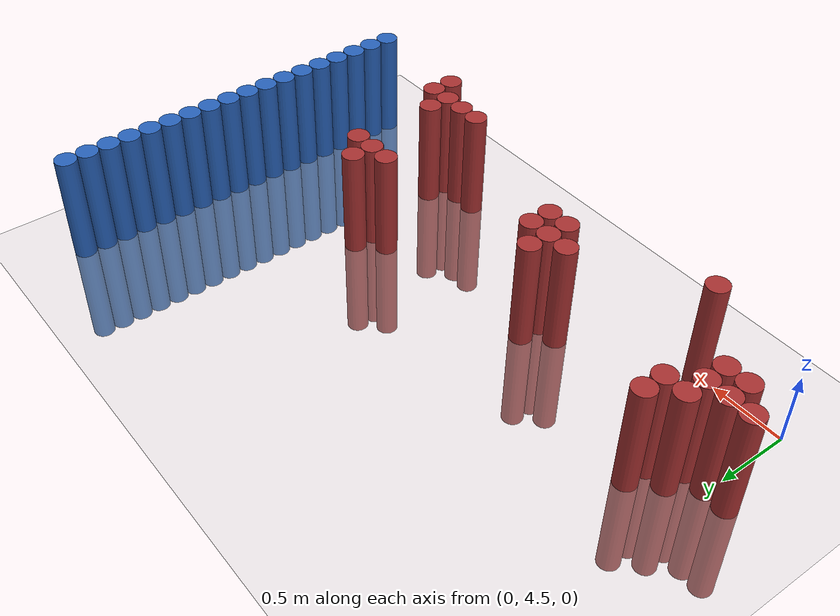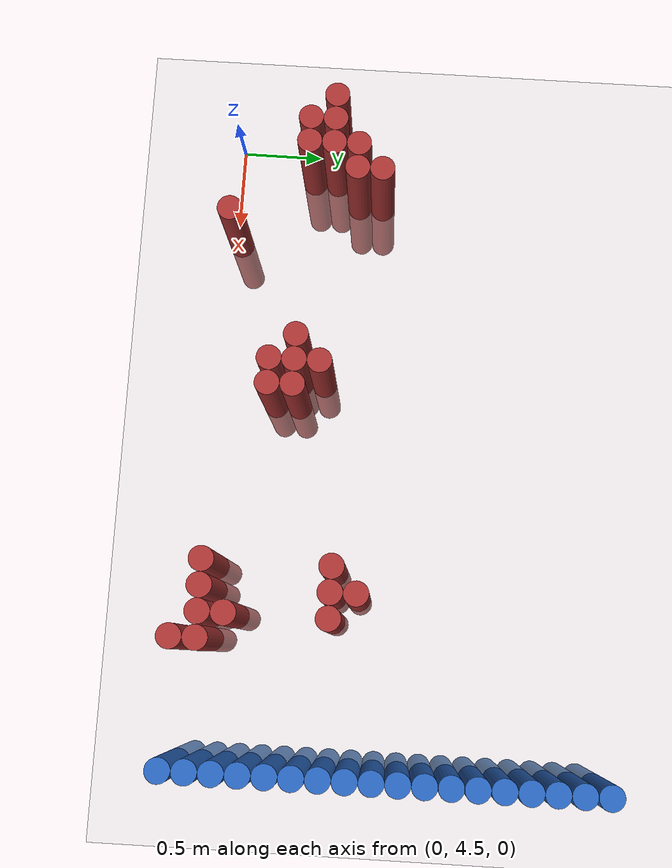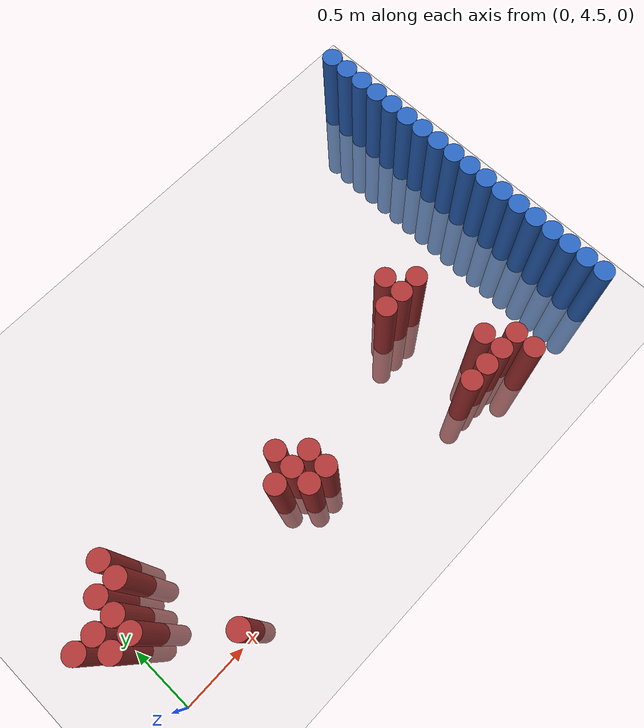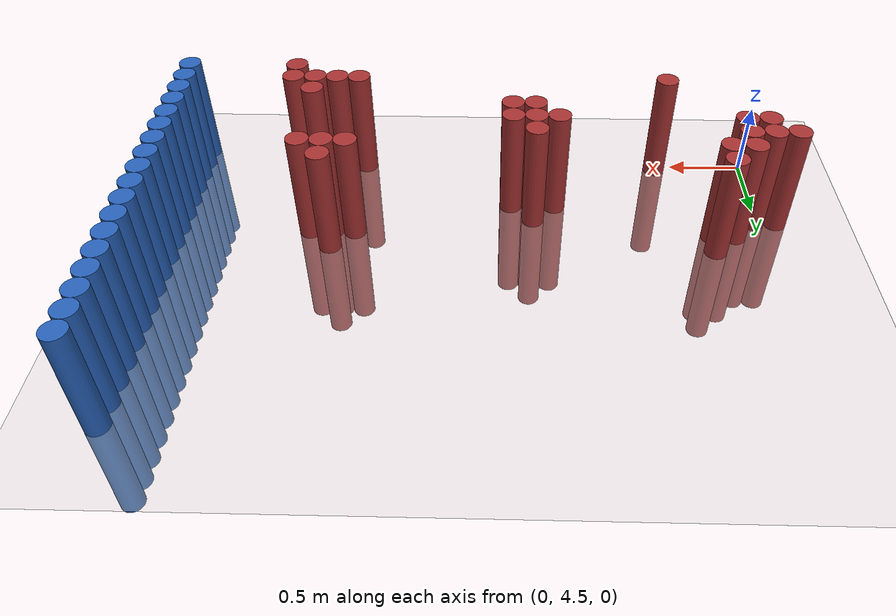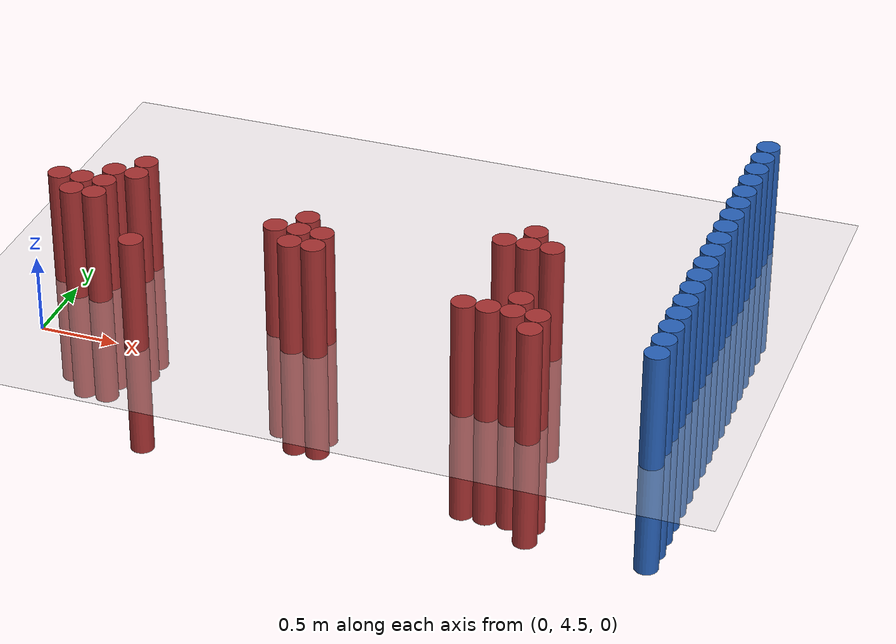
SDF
<sdf version="1.6">
 <world name="default">
  <model name="ground_plane">
   <static>1</static>
   <link name="link">
    <collision name="collision">
     <geometry><plane><normal>0 0 1</normal><size>100 100</size></plane></geometry>
     <surface><friction><ode><mu>100</mu><mu2>50</mu2></ode></friction></surface>
    </collision>
    <visual name="visual">
     <cast_shadows>0</cast_shadows>
     <geometry><plane><normal>0 0 1</normal><size>100 100</size></plane></geometry>
     <material>
      <script><uri>file://media/materials/scripts/gazebo.material</uri><name>Gazebo/Grey</name></script>
     </material>
    </visual>
   </link>
  </model>
  <model name="unit_cylinder_172">
   <static>1</static>
   <pose>3.925000 4.375000 0.000000 0.000000 0.000000 0.000000</pose>
   <link name="link">
    <inertial>
     <mass>1</mass>
     <inertia><ixx>0.145833</ixx><ixy>0</ixy><ixz>0</ixz><iyy>0.145833</iyy><iyz>0</iyz><izz>0.125</izz></inertia>
    </inertial>
    <collision name="collision">
     <geometry><cylinder><radius>0.075000</radius><length>1.5</length></cylinder></geometry>
    </collision>
    <visual name="visual">
     <geometry><cylinder><radius>0.075000</radius><length>1.5</length></cylinder></geometry>
     <material>
      <ambient>0.152000 0.379000 0.720000 1</ambient>
      <diffuse>0.152000 0.379000 0.720000 1</diffuse>
     </material>
     <material>
      <script><name>Gazebo/Grey</name><uri>file://media/materials/scripts/gazebo.material</uri></script>
     </material>
    </visual>
   </link>
  </model>
  <model name="unit_cylinder_174">
   <static>1</static>
   <pose>3.925000 4.525000 0.000000 0.000000 0.000000 0.000000</pose>
   <link name="link">
    <inertial>
     <mass>1</mass>
     <inertia><ixx>0.145833</ixx><ixy>0</ixy><ixz>0</ixz><iyy>0.145833</iyy><iyz>0</iyz><izz>0.125</izz></inertia>
    </inertial>
    <collision name="collision">
     <geometry><cylinder><radius>0.075000</radius><length>1.5</length></cylinder></geometry>
    </collision>
    <visual name="visual">
     <geometry><cylinder><radius>0.075000</radius><length>1.5</length></cylinder></geometry>
     <material>
      <ambient>0.152000 0.379000 0.720000 1</ambient>
      <diffuse>0.152000 0.379000 0.720000 1</diffuse>
     </material>
     <material>
      <script><name>Gazebo/Grey</name><uri>file://media/materials/scripts/gazebo.material</uri></script>
     </material>
    </visual>
   </link>
  </model>
  <model name="unit_cylinder_176">
   <static>1</static>
   <pose>3.925000 4.675000 0.000000 0.000000 0.000000 0.000000</pose>
   <link name="link">
    <inertial>
     <mass>1</mass>
     <inertia><ixx>0.145833</ixx><ixy>0</ixy><ixz>0</ixz><iyy>0.145833</iyy><iyz>0</iyz><izz>0.125</izz></inertia>
    </inertial>
    <collision name="collision">
     <geometry><cylinder><radius>0.075000</radius><length>1.5</length></cylinder></geometry>
    </collision>
    <visual name="visual">
     <geometry><cylinder><radius>0.075000</radius><length>1.5</length></cylinder></geometry>
     <material>
      <ambient>0.152000 0.379000 0.720000 1</ambient>
      <diffuse>0.152000 0.379000 0.720000 1</diffuse>
     </material>
     <material>
      <script><name>Gazebo/Grey</name><uri>file://media/materials/scripts/gazebo.material</uri></script>
     </material>
    </visual>
   </link>
  </model>
  <model name="unit_cylinder_178">
   <static>1</static>
   <pose>3.925000 4.825000 0.000000 0.000000 0.000000 0.000000</pose>
   <link name="link">
    <inertial>
     <mass>1</mass>
     <inertia><ixx>0.145833</ixx><ixy>0</ixy><ixz>0</ixz><iyy>0.145833</iyy><iyz>0</iyz><izz>0.125</izz></inertia>
    </inertial>
    <collision name="collision">
     <geometry><cylinder><radius>0.075000</radius><length>1.5</length></cylinder></geometry>
    </collision>
    <visual name="visual">
     <geometry><cylinder><radius>0.075000</radius><length>1.5</length></cylinder></geometry>
     <material>
      <ambient>0.152000 0.379000 0.720000 1</ambient>
      <diffuse>0.152000 0.379000 0.720000 1</diffuse>
     </material>
     <material>
      <script><name>Gazebo/Grey</name><uri>file://media/materials/scripts/gazebo.material</uri></script>
     </material>
    </visual>
   </link>
  </model>
  <model name="unit_cylinder_180">
   <static>1</static>
   <pose>3.925000 4.975000 0.000000 0.000000 0.000000 0.000000</pose>
   <link name="link">
    <inertial>
     <mass>1</mass>
     <inertia><ixx>0.145833</ixx><ixy>0</ixy><ixz>0</ixz><iyy>0.145833</iyy><iyz>0</iyz><izz>0.125</izz></inertia>
    </inertial>
    <collision name="collision">
     <geometry><cylinder><radius>0.075000</radius><length>1.5</length></cylinder></geometry>
    </collision>
    <visual name="visual">
     <geometry><cylinder><radius>0.075000</radius><length>1.5</length></cylinder></geometry>
     <material>
      <ambient>0.152000 0.379000 0.720000 1</ambient>
      <diffuse>0.152000 0.379000 0.720000 1</diffuse>
     </material>
     <material>
      <script><name>Gazebo/Grey</name><uri>file://media/materials/scripts/gazebo.material</uri></script>
     </material>
    </visual>
   </link>
  </model>
  <model name="unit_cylinder_182">
   <static>1</static>
   <pose>3.925000 5.125000 0.000000 0.000000 0.000000 0.000000</pose>
   <link name="link">
    <inertial>
     <mass>1</mass>
     <inertia><ixx>0.145833</ixx><ixy>0</ixy><ixz>0</ixz><iyy>0.145833</iyy><iyz>0</iyz><izz>0.125</izz></inertia>
    </inertial>
    <collision name="collision">
     <geometry><cylinder><radius>0.075000</radius><length>1.5</length></cylinder></geometry>
    </collision>
    <visual name="visual">
     <geometry><cylinder><radius>0.075000</radius><length>1.5</length></cylinder></geometry>
     <material>
      <ambient>0.152000 0.379000 0.720000 1</ambient>
      <diffuse>0.152000 0.379000 0.720000 1</diffuse>
     </material>
     <material>
      <script><name>Gazebo/Grey</name><uri>file://media/materials/scripts/gazebo.material</uri></script>
     </material>
    </visual>
   </link>
  </model>
  <model name="unit_cylinder_184">
   <static>1</static>
   <pose>3.925000 5.275000 0.000000 0.000000 0.000000 0.000000</pose>
   <link name="link">
    <inertial>
     <mass>1</mass>
     <inertia><ixx>0.145833</ixx><ixy>0</ixy><ixz>0</ixz><iyy>0.145833</iyy><iyz>0</iyz><izz>0.125</izz></inertia>
    </inertial>
    <collision name="collision">
     <geometry><cylinder><radius>0.075000</radius><length>1.5</length></cylinder></geometry>
    </collision>
    <visual name="visual">
     <geometry><cylinder><radius>0.075000</radius><length>1.5</length></cylinder></geometry>
     <material>
      <ambient>0.152000 0.379000 0.720000 1</ambient>
      <diffuse>0.152000 0.379000 0.720000 1</diffuse>
     </material>
     <material>
      <script><name>Gazebo/Grey</name><uri>file://media/materials/scripts/gazebo.material</uri></script>
     </material>
    </visual>
   </link>
  </model>
  <model name="unit_cylinder_186">
   <static>1</static>
   <pose>3.925000 5.425000 0.000000 0.000000 0.000000 0.000000</pose>
   <link name="link">
    <inertial>
     <mass>1</mass>
     <inertia><ixx>0.145833</ixx><ixy>0</ixy><ixz>0</ixz><iyy>0.145833</iyy><iyz>0</iyz><izz>0.125</izz></inertia>
    </inertial>
    <collision name="collision">
     <geometry><cylinder><radius>0.075000</radius><length>1.5</length></cylinder></geometry>
    </collision>
    <visual name="visual">
     <geometry><cylinder><radius>0.075000</radius><length>1.5</length></cylinder></geometry>
     <material>
      <ambient>0.152000 0.379000 0.720000 1</ambient>
      <diffuse>0.152000 0.379000 0.720000 1</diffuse>
     </material>
     <material>
      <script><name>Gazebo/Grey</name><uri>file://media/materials/scripts/gazebo.material</uri></script>
     </material>
    </visual>
   </link>
  </model>
  <model name="unit_cylinder_188">
   <static>1</static>
   <pose>3.925000 5.575000 0.000000 0.000000 0.000000 0.000000</pose>
   <link name="link">
    <inertial>
     <mass>1</mass>
     <inertia><ixx>0.145833</ixx><ixy>0</ixy><ixz>0</ixz><iyy>0.145833</iyy><iyz>0</iyz><izz>0.125</izz></inertia>
    </inertial>
    <collision name="collision">
     <geometry><cylinder><radius>0.075000</radius><length>1.5</length></cylinder></geometry>
    </collision>
    <visual name="visual">
     <geometry><cylinder><radius>0.075000</radius><length>1.5</length></cylinder></geometry>
     <material>
      <ambient>0.152000 0.379000 0.720000 1</ambient>
      <diffuse>0.152000 0.379000 0.720000 1</diffuse>
     </material>
     <material>
      <script><name>Gazebo/Grey</name><uri>file://media/materials/scripts/gazebo.material</uri></script>
     </material>
    </visual>
   </link>
  </model>
  <model name="unit_cylinder_190">
   <static>1</static>
   <pose>3.925000 5.725000 0.000000 0.000000 0.000000 0.000000</pose>
   <link name="link">
    <inertial>
     <mass>1</mass>
     <inertia><ixx>0.145833</ixx><ixy>0</ixy><ixz>0</ixz><iyy>0.145833</iyy><iyz>0</iyz><izz>0.125</izz></inertia>
    </inertial>
    <collision name="collision">
     <geometry><cylinder><radius>0.075000</radius><length>1.5</length></cylinder></geometry>
    </collision>
    <visual name="visual">
     <geometry><cylinder><radius>0.075000</radius><length>1.5</length></cylinder></geometry>
     <material>
      <ambient>0.152000 0.379000 0.720000 1</ambient>
      <diffuse>0.152000 0.379000 0.720000 1</diffuse>
     </material>
     <material>
      <script><name>Gazebo/Grey</name><uri>file://media/materials/scripts/gazebo.material</uri></script>
     </material>
    </visual>
   </link>
  </model>
  <model name="unit_cylinder_192">
   <static>1</static>
   <pose>3.925000 5.875000 0.000000 0.000000 0.000000 0.000000</pose>
   <link name="link">
    <inertial>
     <mass>1</mass>
     <inertia><ixx>0.145833</ixx><ixy>0</ixy><ixz>0</ixz><iyy>0.145833</iyy><iyz>0</iyz><izz>0.125</izz></inertia>
    </inertial>
    <collision name="collision">
     <geometry><cylinder><radius>0.075000</radius><length>1.5</length></cylinder></geometry>
    </collision>
    <visual name="visual">
     <geometry><cylinder><radius>0.075000</radius><length>1.5</length></cylinder></geometry>
     <material>
      <ambient>0.152000 0.379000 0.720000 1</ambient>
      <diffuse>0.152000 0.379000 0.720000 1</diffuse>
     </material>
     <material>
      <script><name>Gazebo/Grey</name><uri>file://media/materials/scripts/gazebo.material</uri></script>
     </material>
    </visual>
   </link>
  </model>
  <model name="unit_cylinder_194">
   <static>1</static>
   <pose>3.925000 6.025000 0.000000 0.000000 0.000000 0.000000</pose>
   <link name="link">
    <inertial>
     <mass>1</mass>
     <inertia><ixx>0.145833</ixx><ixy>0</ixy><ixz>0</ixz><iyy>0.145833</iyy><iyz>0</iyz><izz>0.125</izz></inertia>
    </inertial>
    <collision name="collision">
     <geometry><cylinder><radius>0.075000</radius><length>1.5</length></cylinder></geometry>
    </collision>
    <visual name="visual">
     <geometry><cylinder><radius>0.075000</radius><length>1.5</length></cylinder></geometry>
     <material>
      <ambient>0.152000 0.379000 0.720000 1</ambient>
      <diffuse>0.152000 0.379000 0.720000 1</diffuse>
     </material>
     <material>
      <script><name>Gazebo/Grey</name><uri>file://media/materials/scripts/gazebo.material</uri></script>
     </material>
    </visual>
   </link>
  </model>
  <model name="unit_cylinder_196">
   <static>1</static>
   <pose>3.925000 6.175000 0.000000 0.000000 0.000000 0.000000</pose>
   <link name="link">
    <inertial>
     <mass>1</mass>
     <inertia><ixx>0.145833</ixx><ixy>0</ixy><ixz>0</ixz><iyy>0.145833</iyy><iyz>0</iyz><izz>0.125</izz></inertia>
    </inertial>
    <collision name="collision">
     <geometry><cylinder><radius>0.075000</radius><length>1.5</length></cylinder></geometry>
    </collision>
    <visual name="visual">
     <geometry><cylinder><radius>0.075000</radius><length>1.5</length></cylinder></geometry>
     <material>
      <ambient>0.152000 0.379000 0.720000 1</ambient>
      <diffuse>0.152000 0.379000 0.720000 1</diffuse>
     </material>
     <material>
      <script><name>Gazebo/Grey</name><uri>file://media/materials/scripts/gazebo.material</uri></script>
     </material>
    </visual>
   </link>
  </model>
  <model name="unit_cylinder_198">
   <static>1</static>
   <pose>3.925000 6.325000 0.000000 0.000000 0.000000 0.000000</pose>
   <link name="link">
    <inertial>
     <mass>1</mass>
     <inertia><ixx>0.145833</ixx><ixy>0</ixy><ixz>0</ixz><iyy>0.145833</iyy><iyz>0</iyz><izz>0.125</izz></inertia>
    </inertial>
    <collision name="collision">
     <geometry><cylinder><radius>0.075000</radius><length>1.5</length></cylinder></geometry>
    </collision>
    <visual name="visual">
     <geometry><cylinder><radius>0.075000</radius><length>1.5</length></cylinder></geometry>
     <material>
      <ambient>0.152000 0.379000 0.720000 1</ambient>
      <diffuse>0.152000 0.379000 0.720000 1</diffuse>
     </material>
     <material>
      <script><name>Gazebo/Grey</name><uri>file://media/materials/scripts/gazebo.material</uri></script>
     </material>
    </visual>
   </link>
  </model>
  <model name="unit_cylinder_200">
   <static>1</static>
   <pose>3.925000 6.475000 0.000000 0.000000 0.000000 0.000000</pose>
   <link name="link">
    <inertial>
     <mass>1</mass>
     <inertia><ixx>0.145833</ixx><ixy>0</ixy><ixz>0</ixz><iyy>0.145833</iyy><iyz>0</iyz><izz>0.125</izz></inertia>
    </inertial>
    <collision name="collision">
     <geometry><cylinder><radius>0.075000</radius><length>1.5</length></cylinder></geometry>
    </collision>
    <visual name="visual">
     <geometry><cylinder><radius>0.075000</radius><length>1.5</length></cylinder></geometry>
     <material>
      <ambient>0.152000 0.379000 0.720000 1</ambient>
      <diffuse>0.152000 0.379000 0.720000 1</diffuse>
     </material>
     <material>
      <script><name>Gazebo/Grey</name><uri>file://media/materials/scripts/gazebo.material</uri></script>
     </material>
    </visual>
   </link>
  </model>
  <model name="unit_cylinder_202">
   <static>1</static>
   <pose>3.925000 6.625000 0.000000 0.000000 0.000000 0.000000</pose>
   <link name="link">
    <inertial>
     <mass>1</mass>
     <inertia><ixx>0.145833</ixx><ixy>0</ixy><ixz>0</ixz><iyy>0.145833</iyy><iyz>0</iyz><izz>0.125</izz></inertia>
    </inertial>
    <collision name="collision">
     <geometry><cylinder><radius>0.075000</radius><length>1.5</length></cylinder></geometry>
    </collision>
    <visual name="visual">
     <geometry><cylinder><radius>0.075000</radius><length>1.5</length></cylinder></geometry>
     <material>
      <ambient>0.152000 0.379000 0.720000 1</ambient>
      <diffuse>0.152000 0.379000 0.720000 1</diffuse>
     </material>
     <material>
      <script><name>Gazebo/Grey</name><uri>file://media/materials/scripts/gazebo.material</uri></script>
     </material>
    </visual>
   </link>
  </model>
  <model name="unit_cylinder_204">
   <static>1</static>
   <pose>3.925000 6.775000 0.000000 0.000000 0.000000 0.000000</pose>
   <link name="link">
    <inertial>
     <mass>1</mass>
     <inertia><ixx>0.145833</ixx><ixy>0</ixy><ixz>0</ixz><iyy>0.145833</iyy><iyz>0</iyz><izz>0.125</izz></inertia>
    </inertial>
    <collision name="collision">
     <geometry><cylinder><radius>0.075000</radius><length>1.5</length></cylinder></geometry>
    </collision>
    <visual name="visual">
     <geometry><cylinder><radius>0.075000</radius><length>1.5</length></cylinder></geometry>
     <material>
      <ambient>0.152000 0.379000 0.720000 1</ambient>
      <diffuse>0.152000 0.379000 0.720000 1</diffuse>
     </material>
     <material>
      <script><name>Gazebo/Grey</name><uri>file://media/materials/scripts/gazebo.material</uri></script>
     </material>
    </visual>
   </link>
  </model>
  <model name="unit_cylinder_206">
   <static>1</static>
   <pose>3.925000 6.925000 0.000000 0.000000 0.000000 0.000000</pose>
   <link name="link">
    <inertial>
     <mass>1</mass>
     <inertia><ixx>0.145833</ixx><ixy>0</ixy><ixz>0</ixz><iyy>0.145833</iyy><iyz>0</iyz><izz>0.125</izz></inertia>
    </inertial>
    <collision name="collision">
     <geometry><cylinder><radius>0.075000</radius><length>1.5</length></cylinder></geometry>
    </collision>
    <visual name="visual">
     <geometry><cylinder><radius>0.075000</radius><length>1.5</length></cylinder></geometry>
     <material>
      <ambient>0.152000 0.379000 0.720000 1</ambient>
      <diffuse>0.152000 0.379000 0.720000 1</diffuse>
     </material>
     <material>
      <script><name>Gazebo/Grey</name><uri>file://media/materials/scripts/gazebo.material</uri></script>
     </material>
    </visual>
   </link>
  </model>
  <model name="unit_cylinder_381">
   <static>1</static>
   <pose>-0.125000 5.125000 0.000000 0.000000 0.000000 0.000000</pose>
   <link name="link">
    <inertial>
     <mass>1</mass>
     <inertia><ixx>0.145833</ixx><ixy>0</ixy><ixz>0</ixz><iyy>0.145833</iyy><iyz>0</iyz><izz>0.125</izz></inertia>
    </inertial>
    <collision name="collision">
     <geometry><cylinder><radius>0.075000</radius><length>1.5</length></cylinder></geometry>
    </collision>
    <visual name="visual">
     <geometry><cylinder><radius>0.075000</radius><length>1.5</length></cylinder></geometry>
     <material>
      <ambient>0.648000 0.192000 0.192000 1</ambient>
      <diffuse>0.648000 0.192000 0.192000 1</diffuse>
     </material>
     <material>
      <script><name>Gazebo/Grey</name><uri>file://media/materials/scripts/gazebo.material</uri></script>
     </material>
    </visual>
   </link>
  </model>
  <model name="unit_cylinder_390">
   <static>1</static>
   <pose>0.025000 4.975000 0.000000 0.000000 0.000000 0.000000</pose>
   <link name="link">
    <inertial>
     <mass>1</mass>
     <inertia><ixx>0.145833</ixx><ixy>0</ixy><ixz>0</ixz><iyy>0.145833</iyy><iyz>0</iyz><izz>0.125</izz></inertia>
    </inertial>
    <collision name="collision">
     <geometry><cylinder><radius>0.075000</radius><length>1.5</length></cylinder></geometry>
    </collision>
    <visual name="visual">
     <geometry><cylinder><radius>0.075000</radius><length>1.5</length></cylinder></geometry>
     <material>
      <ambient>0.648000 0.192000 0.192000 1</ambient>
      <diffuse>0.648000 0.192000 0.192000 1</diffuse>
     </material>
     <material>
      <script><name>Gazebo/Grey</name><uri>file://media/materials/scripts/gazebo.material</uri></script>
     </material>
    </visual>
   </link>
  </model>
  <model name="unit_cylinder_391">
   <static>1</static>
   <pose>0.025000 5.125000 0.000000 0.000000 0.000000 0.000000</pose>
   <link name="link">
    <inertial>
     <mass>1</mass>
     <inertia><ixx>0.145833</ixx><ixy>0</ixy><ixz>0</ixz><iyy>0.145833</iyy><iyz>0</iyz><izz>0.125</izz></inertia>
    </inertial>
    <collision name="collision">
     <geometry><cylinder><radius>0.075000</radius><length>1.5</length></cylinder></geometry>
    </collision>
    <visual name="visual">
     <geometry><cylinder><radius>0.075000</radius><length>1.5</length></cylinder></geometry>
     <material>
      <ambient>0.648000 0.192000 0.192000 1</ambient>
      <diffuse>0.648000 0.192000 0.192000 1</diffuse>
     </material>
     <material>
      <script><name>Gazebo/Grey</name><uri>file://media/materials/scripts/gazebo.material</uri></script>
     </material>
    </visual>
   </link>
  </model>
  <model name="unit_cylinder_396">
   <static>1</static>
   <pose>0.175000 4.975000 0.000000 0.000000 0.000000 0.000000</pose>
   <link name="link">
    <inertial>
     <mass>1</mass>
     <inertia><ixx>0.145833</ixx><ixy>0</ixy><ixz>0</ixz><iyy>0.145833</iyy><iyz>0</iyz><izz>0.125</izz></inertia>
    </inertial>
    <collision name="collision">
     <geometry><cylinder><radius>0.075000</radius><length>1.5</length></cylinder></geometry>
    </collision>
    <visual name="visual">
     <geometry><cylinder><radius>0.075000</radius><length>1.5</length></cylinder></geometry>
     <material>
      <ambient>0.648000 0.192000 0.192000 1</ambient>
      <diffuse>0.648000 0.192000 0.192000 1</diffuse>
     </material>
     <material>
      <script><name>Gazebo/Grey</name><uri>file://media/materials/scripts/gazebo.material</uri></script>
     </material>
    </visual>
   </link>
  </model>
  <model name="unit_cylinder_397">
   <static>1</static>
   <pose>0.175000 5.125000 0.000000 0.000000 0.000000 0.000000</pose>
   <link name="link">
    <inertial>
     <mass>1</mass>
     <inertia><ixx>0.145833</ixx><ixy>0</ixy><ixz>0</ixz><iyy>0.145833</iyy><iyz>0</iyz><izz>0.125</izz></inertia>
    </inertial>
    <collision name="collision">
     <geometry><cylinder><radius>0.075000</radius><length>1.5</length></cylinder></geometry>
    </collision>
    <visual name="visual">
     <geometry><cylinder><radius>0.075000</radius><length>1.5</length></cylinder></geometry>
     <material>
      <ambient>0.648000 0.192000 0.192000 1</ambient>
      <diffuse>0.648000 0.192000 0.192000 1</diffuse>
     </material>
     <material>
      <script><name>Gazebo/Grey</name><uri>file://media/materials/scripts/gazebo.material</uri></script>
     </material>
    </visual>
   </link>
  </model>
  <model name="unit_cylinder_398">
   <static>1</static>
   <pose>0.175000 5.275000 0.000000 0.000000 0.000000 0.000000</pose>
   <link name="link">
    <inertial>
     <mass>1</mass>
     <inertia><ixx>0.145833</ixx><ixy>0</ixy><ixz>0</ixz><iyy>0.145833</iyy><iyz>0</iyz><izz>0.125</izz></inertia>
    </inertial>
    <collision name="collision">
     <geometry><cylinder><radius>0.075000</radius><length>1.5</length></cylinder></geometry>
    </collision>
    <visual name="visual">
     <geometry><cylinder><radius>0.075000</radius><length>1.5</length></cylinder></geometry>
     <material>
      <ambient>0.648000 0.192000 0.192000 1</ambient>
      <diffuse>0.648000 0.192000 0.192000 1</diffuse>
     </material>
     <material>
      <script><name>Gazebo/Grey</name><uri>file://media/materials/scripts/gazebo.material</uri></script>
     </material>
    </visual>
   </link>
  </model>
  <model name="unit_cylinder_402">
   <static>1</static>
   <pose>0.325000 5.275000 0.000000 0.000000 0.000000 0.000000</pose>
   <link name="link">
    <inertial>
     <mass>1</mass>
     <inertia><ixx>0.145833</ixx><ixy>0</ixy><ixz>0</ixz><iyy>0.145833</iyy><iyz>0</iyz><izz>0.125</izz></inertia>
    </inertial>
    <collision name="collision">
     <geometry><cylinder><radius>0.075000</radius><length>1.5</length></cylinder></geometry>
    </collision>
    <visual name="visual">
     <geometry><cylinder><radius>0.075000</radius><length>1.5</length></cylinder></geometry>
     <material>
      <ambient>0.648000 0.192000 0.192000 1</ambient>
      <diffuse>0.648000 0.192000 0.192000 1</diffuse>
     </material>
     <material>
      <script><name>Gazebo/Grey</name><uri>file://media/materials/scripts/gazebo.material</uri></script>
     </material>
    </visual>
   </link>
  </model>
  <model name="unit_cylinder_403">
   <static>1</static>
   <pose>0.325000 5.425000 0.000000 0.000000 0.000000 0.000000</pose>
   <link name="link">
    <inertial>
     <mass>1</mass>
     <inertia><ixx>0.145833</ixx><ixy>0</ixy><ixz>0</ixz><iyy>0.145833</iyy><iyz>0</iyz><izz>0.125</izz></inertia>
    </inertial>
    <collision name="collision">
     <geometry><cylinder><radius>0.075000</radius><length>1.5</length></cylinder></geometry>
    </collision>
    <visual name="visual">
     <geometry><cylinder><radius>0.075000</radius><length>1.5</length></cylinder></geometry>
     <material>
      <ambient>0.648000 0.192000 0.192000 1</ambient>
      <diffuse>0.648000 0.192000 0.192000 1</diffuse>
     </material>
     <material>
      <script><name>Gazebo/Grey</name><uri>file://media/materials/scripts/gazebo.material</uri></script>
     </material>
    </visual>
   </link>
  </model>
  <model name="unit_cylinder_414">
   <static>1</static>
   <pose>0.625000 4.525000 0.000000 0.000000 0.000000 0.000000</pose>
   <link name="link">
    <inertial>
     <mass>1</mass>
     <inertia><ixx>0.145833</ixx><ixy>0</ixy><ixz>0</ixz><iyy>0.145833</iyy><iyz>0</iyz><izz>0.125</izz></inertia>
    </inertial>
    <collision name="collision">
     <geometry><cylinder><radius>0.075000</radius><length>1.5</length></cylinder></geometry>
    </collision>
    <visual name="visual">
     <geometry><cylinder><radius>0.075000</radius><length>1.5</length></cylinder></geometry>
     <material>
      <ambient>0.648000 0.192000 0.192000 1</ambient>
      <diffuse>0.648000 0.192000 0.192000 1</diffuse>
     </material>
     <material>
      <script><name>Gazebo/Grey</name><uri>file://media/materials/scripts/gazebo.material</uri></script>
     </material>
    </visual>
   </link>
  </model>
  <model name="unit_cylinder_424">
   <static>1</static>
   <pose>1.375000 4.975000 0.000000 0.000000 0.000000 0.000000</pose>
   <link name="link">
    <inertial>
     <mass>1</mass>
     <inertia><ixx>0.145833</ixx><ixy>0</ixy><ixz>0</ixz><iyy>0.145833</iyy><iyz>0</iyz><izz>0.125</izz></inertia>
    </inertial>
    <collision name="collision">
     <geometry><cylinder><radius>0.075000</radius><length>1.5</length></cylinder></geometry>
    </collision>
    <visual name="visual">
     <geometry><cylinder><radius>0.075000</radius><length>1.5</length></cylinder></geometry>
     <material>
      <ambient>0.648000 0.192000 0.192000 1</ambient>
      <diffuse>0.648000 0.192000 0.192000 1</diffuse>
     </material>
     <material>
      <script><name>Gazebo/Grey</name><uri>file://media/materials/scripts/gazebo.material</uri></script>
     </material>
    </visual>
   </link>
  </model>
  <model name="unit_cylinder_425">
   <static>1</static>
   <pose>1.525000 4.825000 0.000000 0.000000 0.000000 0.000000</pose>
   <link name="link">
    <inertial>
     <mass>1</mass>
     <inertia><ixx>0.145833</ixx><ixy>0</ixy><ixz>0</ixz><iyy>0.145833</iyy><iyz>0</iyz><izz>0.125</izz></inertia>
    </inertial>
    <collision name="collision">
     <geometry><cylinder><radius>0.075000</radius><length>1.5</length></cylinder></geometry>
    </collision>
    <visual name="visual">
     <geometry><cylinder><radius>0.075000</radius><length>1.5</length></cylinder></geometry>
     <material>
      <ambient>0.648000 0.192000 0.192000 1</ambient>
      <diffuse>0.648000 0.192000 0.192000 1</diffuse>
     </material>
     <material>
      <script><name>Gazebo/Grey</name><uri>file://media/materials/scripts/gazebo.material</uri></script>
     </material>
    </visual>
   </link>
  </model>
  <model name="unit_cylinder_426">
   <static>1</static>
   <pose>1.525000 4.975000 0.000000 0.000000 0.000000 0.000000</pose>
   <link name="link">
    <inertial>
     <mass>1</mass>
     <inertia><ixx>0.145833</ixx><ixy>0</ixy><ixz>0</ixz><iyy>0.145833</iyy><iyz>0</iyz><izz>0.125</izz></inertia>
    </inertial>
    <collision name="collision">
     <geometry><cylinder><radius>0.075000</radius><length>1.5</length></cylinder></geometry>
    </collision>
    <visual name="visual">
     <geometry><cylinder><radius>0.075000</radius><length>1.5</length></cylinder></geometry>
     <material>
      <ambient>0.648000 0.192000 0.192000 1</ambient>
      <diffuse>0.648000 0.192000 0.192000 1</diffuse>
     </material>
     <material>
      <script><name>Gazebo/Grey</name><uri>file://media/materials/scripts/gazebo.material</uri></script>
     </material>
    </visual>
   </link>
  </model>
  <model name="unit_cylinder_427">
   <static>1</static>
   <pose>1.525000 5.125000 0.000000 0.000000 0.000000 0.000000</pose>
   <link name="link">
    <inertial>
     <mass>1</mass>
     <inertia><ixx>0.145833</ixx><ixy>0</ixy><ixz>0</ixz><iyy>0.145833</iyy><iyz>0</iyz><izz>0.125</izz></inertia>
    </inertial>
    <collision name="collision">
     <geometry><cylinder><radius>0.075000</radius><length>1.5</length></cylinder></geometry>
    </collision>
    <visual name="visual">
     <geometry><cylinder><radius>0.075000</radius><length>1.5</length></cylinder></geometry>
     <material>
      <ambient>0.648000 0.192000 0.192000 1</ambient>
      <diffuse>0.648000 0.192000 0.192000 1</diffuse>
     </material>
     <material>
      <script><name>Gazebo/Grey</name><uri>file://media/materials/scripts/gazebo.material</uri></script>
     </material>
    </visual>
   </link>
  </model>
  <model name="unit_cylinder_428">
   <static>1</static>
   <pose>1.675000 4.825000 0.000000 0.000000 0.000000 0.000000</pose>
   <link name="link">
    <inertial>
     <mass>1</mass>
     <inertia><ixx>0.145833</ixx><ixy>0</ixy><ixz>0</ixz><iyy>0.145833</iyy><iyz>0</iyz><izz>0.125</izz></inertia>
    </inertial>
    <collision name="collision">
     <geometry><cylinder><radius>0.075000</radius><length>1.5</length></cylinder></geometry>
    </collision>
    <visual name="visual">
     <geometry><cylinder><radius>0.075000</radius><length>1.5</length></cylinder></geometry>
     <material>
      <ambient>0.648000 0.192000 0.192000 1</ambient>
      <diffuse>0.648000 0.192000 0.192000 1</diffuse>
     </material>
     <material>
      <script><name>Gazebo/Grey</name><uri>file://media/materials/scripts/gazebo.material</uri></script>
     </material>
    </visual>
   </link>
  </model>
  <model name="unit_cylinder_429">
   <static>1</static>
   <pose>1.675000 4.975000 0.000000 0.000000 0.000000 0.000000</pose>
   <link name="link">
    <inertial>
     <mass>1</mass>
     <inertia><ixx>0.145833</ixx><ixy>0</ixy><ixz>0</ixz><iyy>0.145833</iyy><iyz>0</iyz><izz>0.125</izz></inertia>
    </inertial>
    <collision name="collision">
     <geometry><cylinder><radius>0.075000</radius><length>1.5</length></cylinder></geometry>
    </collision>
    <visual name="visual">
     <geometry><cylinder><radius>0.075000</radius><length>1.5</length></cylinder></geometry>
     <material>
      <ambient>0.648000 0.192000 0.192000 1</ambient>
      <diffuse>0.648000 0.192000 0.192000 1</diffuse>
     </material>
     <material>
      <script><name>Gazebo/Grey</name><uri>file://media/materials/scripts/gazebo.material</uri></script>
     </material>
    </visual>
   </link>
  </model>
  <model name="unit_cylinder_466">
   <static>1</static>
   <pose>2.725000 4.525000 0.000000 0.000000 0.000000 0.000000</pose>
   <link name="link">
    <inertial>
     <mass>1</mass>
     <inertia><ixx>0.145833</ixx><ixy>0</ixy><ixz>0</ixz><iyy>0.145833</iyy><iyz>0</iyz><izz>0.125</izz></inertia>
    </inertial>
    <collision name="collision">
     <geometry><cylinder><radius>0.075000</radius><length>1.5</length></cylinder></geometry>
    </collision>
    <visual name="visual">
     <geometry><cylinder><radius>0.075000</radius><length>1.5</length></cylinder></geometry>
     <material>
      <ambient>0.648000 0.192000 0.192000 1</ambient>
      <diffuse>0.648000 0.192000 0.192000 1</diffuse>
     </material>
     <material>
      <script><name>Gazebo/Grey</name><uri>file://media/materials/scripts/gazebo.material</uri></script>
     </material>
    </visual>
   </link>
  </model>
  <model name="unit_cylinder_467">
   <static>1</static>
   <pose>2.725000 5.275000 0.000000 0.000000 0.000000 0.000000</pose>
   <link name="link">
    <inertial>
     <mass>1</mass>
     <inertia><ixx>0.145833</ixx><ixy>0</ixy><ixz>0</ixz><iyy>0.145833</iyy><iyz>0</iyz><izz>0.125</izz></inertia>
    </inertial>
    <collision name="collision">
     <geometry><cylinder><radius>0.075000</radius><length>1.5</length></cylinder></geometry>
    </collision>
    <visual name="visual">
     <geometry><cylinder><radius>0.075000</radius><length>1.5</length></cylinder></geometry>
     <material>
      <ambient>0.648000 0.192000 0.192000 1</ambient>
      <diffuse>0.648000 0.192000 0.192000 1</diffuse>
     </material>
     <material>
      <script><name>Gazebo/Grey</name><uri>file://media/materials/scripts/gazebo.material</uri></script>
     </material>
    </visual>
   </link>
  </model>
  <model name="unit_cylinder_470">
   <static>1</static>
   <pose>2.875000 4.525000 0.000000 0.000000 0.000000 0.000000</pose>
   <link name="link">
    <inertial>
     <mass>1</mass>
     <inertia><ixx>0.145833</ixx><ixy>0</ixy><ixz>0</ixz><iyy>0.145833</iyy><iyz>0</iyz><izz>0.125</izz></inertia>
    </inertial>
    <collision name="collision">
     <geometry><cylinder><radius>0.075000</radius><length>1.5</length></cylinder></geometry>
    </collision>
    <visual name="visual">
     <geometry><cylinder><radius>0.075000</radius><length>1.5</length></cylinder></geometry>
     <material>
      <ambient>0.648000 0.192000 0.192000 1</ambient>
      <diffuse>0.648000 0.192000 0.192000 1</diffuse>
     </material>
     <material>
      <script><name>Gazebo/Grey</name><uri>file://media/materials/scripts/gazebo.material</uri></script>
     </material>
    </visual>
   </link>
  </model>
  <model name="unit_cylinder_471">
   <static>1</static>
   <pose>2.875000 5.275000 0.000000 0.000000 0.000000 0.000000</pose>
   <link name="link">
    <inertial>
     <mass>1</mass>
     <inertia><ixx>0.145833</ixx><ixy>0</ixy><ixz>0</ixz><iyy>0.145833</iyy><iyz>0</iyz><izz>0.125</izz></inertia>
    </inertial>
    <collision name="collision">
     <geometry><cylinder><radius>0.075000</radius><length>1.5</length></cylinder></geometry>
    </collision>
    <visual name="visual">
     <geometry><cylinder><radius>0.075000</radius><length>1.5</length></cylinder></geometry>
     <material>
      <ambient>0.648000 0.192000 0.192000 1</ambient>
      <diffuse>0.648000 0.192000 0.192000 1</diffuse>
     </material>
     <material>
      <script><name>Gazebo/Grey</name><uri>file://media/materials/scripts/gazebo.material</uri></script>
     </material>
    </visual>
   </link>
  </model>
  <model name="unit_cylinder_472">
   <static>1</static>
   <pose>2.875000 5.425000 0.000000 0.000000 0.000000 0.000000</pose>
   <link name="link">
    <inertial>
     <mass>1</mass>
     <inertia><ixx>0.145833</ixx><ixy>0</ixy><ixz>0</ixz><iyy>0.145833</iyy><iyz>0</iyz><izz>0.125</izz></inertia>
    </inertial>
    <collision name="collision">
     <geometry><cylinder><radius>0.075000</radius><length>1.5</length></cylinder></geometry>
    </collision>
    <visual name="visual">
     <geometry><cylinder><radius>0.075000</radius><length>1.5</length></cylinder></geometry>
     <material>
      <ambient>0.648000 0.192000 0.192000 1</ambient>
      <diffuse>0.648000 0.192000 0.192000 1</diffuse>
     </material>
     <material>
      <script><name>Gazebo/Grey</name><uri>file://media/materials/scripts/gazebo.material</uri></script>
     </material>
    </visual>
   </link>
  </model>
  <model name="unit_cylinder_476">
   <static>1</static>
   <pose>3.025000 4.525000 0.000000 0.000000 0.000000 0.000000</pose>
   <link name="link">
    <inertial>
     <mass>1</mass>
     <inertia><ixx>0.145833</ixx><ixy>0</ixy><ixz>0</ixz><iyy>0.145833</iyy><iyz>0</iyz><izz>0.125</izz></inertia>
    </inertial>
    <collision name="collision">
     <geometry><cylinder><radius>0.075000</radius><length>1.5</length></cylinder></geometry>
    </collision>
    <visual name="visual">
     <geometry><cylinder><radius>0.075000</radius><length>1.5</length></cylinder></geometry>
     <material>
      <ambient>0.648000 0.192000 0.192000 1</ambient>
      <diffuse>0.648000 0.192000 0.192000 1</diffuse>
     </material>
     <material>
      <script><name>Gazebo/Grey</name><uri>file://media/materials/scripts/gazebo.material</uri></script>
     </material>
    </visual>
   </link>
  </model>
  <model name="unit_cylinder_477">
   <static>1</static>
   <pose>3.025000 4.675000 0.000000 0.000000 0.000000 0.000000</pose>
   <link name="link">
    <inertial>
     <mass>1</mass>
     <inertia><ixx>0.145833</ixx><ixy>0</ixy><ixz>0</ixz><iyy>0.145833</iyy><iyz>0</iyz><izz>0.125</izz></inertia>
    </inertial>
    <collision name="collision">
     <geometry><cylinder><radius>0.075000</radius><length>1.5</length></cylinder></geometry>
    </collision>
    <visual name="visual">
     <geometry><cylinder><radius>0.075000</radius><length>1.5</length></cylinder></geometry>
     <material>
      <ambient>0.648000 0.192000 0.192000 1</ambient>
      <diffuse>0.648000 0.192000 0.192000 1</diffuse>
     </material>
     <material>
      <script><name>Gazebo/Grey</name><uri>file://media/materials/scripts/gazebo.material</uri></script>
     </material>
    </visual>
   </link>
  </model>
  <model name="unit_cylinder_478">
   <static>1</static>
   <pose>3.025000 5.275000 0.000000 0.000000 0.000000 0.000000</pose>
   <link name="link">
    <inertial>
     <mass>1</mass>
     <inertia><ixx>0.145833</ixx><ixy>0</ixy><ixz>0</ixz><iyy>0.145833</iyy><iyz>0</iyz><izz>0.125</izz></inertia>
    </inertial>
    <collision name="collision">
     <geometry><cylinder><radius>0.075000</radius><length>1.5</length></cylinder></geometry>
    </collision>
    <visual name="visual">
     <geometry><cylinder><radius>0.075000</radius><length>1.5</length></cylinder></geometry>
     <material>
      <ambient>0.648000 0.192000 0.192000 1</ambient>
      <diffuse>0.648000 0.192000 0.192000 1</diffuse>
     </material>
     <material>
      <script><name>Gazebo/Grey</name><uri>file://media/materials/scripts/gazebo.material</uri></script>
     </material>
    </visual>
   </link>
  </model>
  <model name="unit_cylinder_482">
   <static>1</static>
   <pose>3.175000 4.375000 0.000000 0.000000 0.000000 0.000000</pose>
   <link name="link">
    <inertial>
     <mass>1</mass>
     <inertia><ixx>0.145833</ixx><ixy>0</ixy><ixz>0</ixz><iyy>0.145833</iyy><iyz>0</iyz><izz>0.125</izz></inertia>
    </inertial>
    <collision name="collision">
     <geometry><cylinder><radius>0.075000</radius><length>1.5</length></cylinder></geometry>
    </collision>
    <visual name="visual">
     <geometry><cylinder><radius>0.075000</radius><length>1.5</length></cylinder></geometry>
     <material>
      <ambient>0.648000 0.192000 0.192000 1</ambient>
      <diffuse>0.648000 0.192000 0.192000 1</diffuse>
     </material>
     <material>
      <script><name>Gazebo/Grey</name><uri>file://media/materials/scripts/gazebo.material</uri></script>
     </material>
    </visual>
   </link>
  </model>
  <model name="unit_cylinder_483">
   <static>1</static>
   <pose>3.175000 4.525000 0.000000 0.000000 0.000000 0.000000</pose>
   <link name="link">
    <inertial>
     <mass>1</mass>
     <inertia><ixx>0.145833</ixx><ixy>0</ixy><ixz>0</ixz><iyy>0.145833</iyy><iyz>0</iyz><izz>0.125</izz></inertia>
    </inertial>
    <collision name="collision">
     <geometry><cylinder><radius>0.075000</radius><length>1.5</length></cylinder></geometry>
    </collision>
    <visual name="visual">
     <geometry><cylinder><radius>0.075000</radius><length>1.5</length></cylinder></geometry>
     <material>
      <ambient>0.648000 0.192000 0.192000 1</ambient>
      <diffuse>0.648000 0.192000 0.192000 1</diffuse>
     </material>
     <material>
      <script><name>Gazebo/Grey</name><uri>file://media/materials/scripts/gazebo.material</uri></script>
     </material>
    </visual>
   </link>
  </model>
  <model name="unit_cylinder_555">
   <static>1</static>
   <pose>3.925000 4.375000 0.000000 0.000000 0.000000 0.000000</pose>
   <link name="link">
    <inertial>
     <mass>1</mass>
     <inertia><ixx>0.145833</ixx><ixy>0</ixy><ixz>0</ixz><iyy>0.145833</iyy><iyz>0</iyz><izz>0.125</izz></inertia>
    </inertial>
    <collision name="collision">
     <geometry><cylinder><radius>0.075000</radius><length>1.5</length></cylinder></geometry>
    </collision>
    <visual name="visual">
     <geometry><cylinder><radius>0.075000</radius><length>1.5</length></cylinder></geometry>
     <material>
      <ambient>0.152000 0.379000 0.720000 1</ambient>
      <diffuse>0.152000 0.379000 0.720000 1</diffuse>
     </material>
     <material>
      <script><name>Gazebo/Grey</name><uri>file://media/materials/scripts/gazebo.material</uri></script>
     </material>
    </visual>
   </link>
  </model>
  <model name="unit_cylinder_556">
   <static>1</static>
   <pose>3.925000 4.525000 0.000000 0.000000 0.000000 0.000000</pose>
   <link name="link">
    <inertial>
     <mass>1</mass>
     <inertia><ixx>0.145833</ixx><ixy>0</ixy><ixz>0</ixz><iyy>0.145833</iyy><iyz>0</iyz><izz>0.125</izz></inertia>
    </inertial>
    <collision name="collision">
     <geometry><cylinder><radius>0.075000</radius><length>1.5</length></cylinder></geometry>
    </collision>
    <visual name="visual">
     <geometry><cylinder><radius>0.075000</radius><length>1.5</length></cylinder></geometry>
     <material>
      <ambient>0.152000 0.379000 0.720000 1</ambient>
      <diffuse>0.152000 0.379000 0.720000 1</diffuse>
     </material>
     <material>
      <script><name>Gazebo/Grey</name><uri>file://media/materials/scripts/gazebo.material</uri></script>
     </material>
    </visual>
   </link>
  </model>
  <model name="unit_cylinder_557">
   <static>1</static>
   <pose>3.925000 4.675000 0.000000 0.000000 0.000000 0.000000</pose>
   <link name="link">
    <inertial>
     <mass>1</mass>
     <inertia><ixx>0.145833</ixx><ixy>0</ixy><ixz>0</ixz><iyy>0.145833</iyy><iyz>0</iyz><izz>0.125</izz></inertia>
    </inertial>
    <collision name="collision">
     <geometry><cylinder><radius>0.075000</radius><length>1.5</length></cylinder></geometry>
    </collision>
    <visual name="visual">
     <geometry><cylinder><radius>0.075000</radius><length>1.5</length></cylinder></geometry>
     <material>
      <ambient>0.152000 0.379000 0.720000 1</ambient>
      <diffuse>0.152000 0.379000 0.720000 1</diffuse>
     </material>
     <material>
      <script><name>Gazebo/Grey</name><uri>file://media/materials/scripts/gazebo.material</uri></script>
     </material>
    </visual>
   </link>
  </model>
  <model name="unit_cylinder_558">
   <static>1</static>
   <pose>3.925000 4.825000 0.000000 0.000000 0.000000 0.000000</pose>
   <link name="link">
    <inertial>
     <mass>1</mass>
     <inertia><ixx>0.145833</ixx><ixy>0</ixy><ixz>0</ixz><iyy>0.145833</iyy><iyz>0</iyz><izz>0.125</izz></inertia>
    </inertial>
    <collision name="collision">
     <geometry><cylinder><radius>0.075000</radius><length>1.5</length></cylinder></geometry>
    </collision>
    <visual name="visual">
     <geometry><cylinder><radius>0.075000</radius><length>1.5</length></cylinder></geometry>
     <material>
      <ambient>0.152000 0.379000 0.720000 1</ambient>
      <diffuse>0.152000 0.379000 0.720000 1</diffuse>
     </material>
     <material>
      <script><name>Gazebo/Grey</name><uri>file://media/materials/scripts/gazebo.material</uri></script>
     </material>
    </visual>
   </link>
  </model>
  <model name="unit_cylinder_559">
   <static>1</static>
   <pose>3.925000 4.975000 0.000000 0.000000 0.000000 0.000000</pose>
   <link name="link">
    <inertial>
     <mass>1</mass>
     <inertia><ixx>0.145833</ixx><ixy>0</ixy><ixz>0</ixz><iyy>0.145833</iyy><iyz>0</iyz><izz>0.125</izz></inertia>
    </inertial>
    <collision name="collision">
     <geometry><cylinder><radius>0.075000</radius><length>1.5</length></cylinder></geometry>
    </collision>
    <visual name="visual">
     <geometry><cylinder><radius>0.075000</radius><length>1.5</length></cylinder></geometry>
     <material>
      <ambient>0.152000 0.379000 0.720000 1</ambient>
      <diffuse>0.152000 0.379000 0.720000 1</diffuse>
     </material>
     <material>
      <script><name>Gazebo/Grey</name><uri>file://media/materials/scripts/gazebo.material</uri></script>
     </material>
    </visual>
   </link>
  </model>
  <model name="unit_cylinder_560">
   <static>1</static>
   <pose>3.925000 5.125000 0.000000 0.000000 0.000000 0.000000</pose>
   <link name="link">
    <inertial>
     <mass>1</mass>
     <inertia><ixx>0.145833</ixx><ixy>0</ixy><ixz>0</ixz><iyy>0.145833</iyy><iyz>0</iyz><izz>0.125</izz></inertia>
    </inertial>
    <collision name="collision">
     <geometry><cylinder><radius>0.075000</radius><length>1.5</length></cylinder></geometry>
    </collision>
    <visual name="visual">
     <geometry><cylinder><radius>0.075000</radius><length>1.5</length></cylinder></geometry>
     <material>
      <ambient>0.152000 0.379000 0.720000 1</ambient>
      <diffuse>0.152000 0.379000 0.720000 1</diffuse>
     </material>
     <material>
      <script><name>Gazebo/Grey</name><uri>file://media/materials/scripts/gazebo.material</uri></script>
     </material>
    </visual>
   </link>
  </model>
  <model name="unit_cylinder_561">
   <static>1</static>
   <pose>3.925000 5.275000 0.000000 0.000000 0.000000 0.000000</pose>
   <link name="link">
    <inertial>
     <mass>1</mass>
     <inertia><ixx>0.145833</ixx><ixy>0</ixy><ixz>0</ixz><iyy>0.145833</iyy><iyz>0</iyz><izz>0.125</izz></inertia>
    </inertial>
    <collision name="collision">
     <geometry><cylinder><radius>0.075000</radius><length>1.5</length></cylinder></geometry>
    </collision>
    <visual name="visual">
     <geometry><cylinder><radius>0.075000</radius><length>1.5</length></cylinder></geometry>
     <material>
      <ambient>0.152000 0.379000 0.720000 1</ambient>
      <diffuse>0.152000 0.379000 0.720000 1</diffuse>
     </material>
     <material>
      <script><name>Gazebo/Grey</name><uri>file://media/materials/scripts/gazebo.material</uri></script>
     </material>
    </visual>
   </link>
  </model>
  <model name="unit_cylinder_562">
   <static>1</static>
   <pose>3.925000 5.425000 0.000000 0.000000 0.000000 0.000000</pose>
   <link name="link">
    <inertial>
     <mass>1</mass>
     <inertia><ixx>0.145833</ixx><ixy>0</ixy><ixz>0</ixz><iyy>0.145833</iyy><iyz>0</iyz><izz>0.125</izz></inertia>
    </inertial>
    <collision name="collision">
     <geometry><cylinder><radius>0.075000</radius><length>1.5</length></cylinder></geometry>
    </collision>
    <visual name="visual">
     <geometry><cylinder><radius>0.075000</radius><length>1.5</length></cylinder></geometry>
     <material>
      <ambient>0.152000 0.379000 0.720000 1</ambient>
      <diffuse>0.152000 0.379000 0.720000 1</diffuse>
     </material>
     <material>
      <script><name>Gazebo/Grey</name><uri>file://media/materials/scripts/gazebo.material</uri></script>
     </material>
    </visual>
   </link>
  </model>
 </world>
</sdf>
